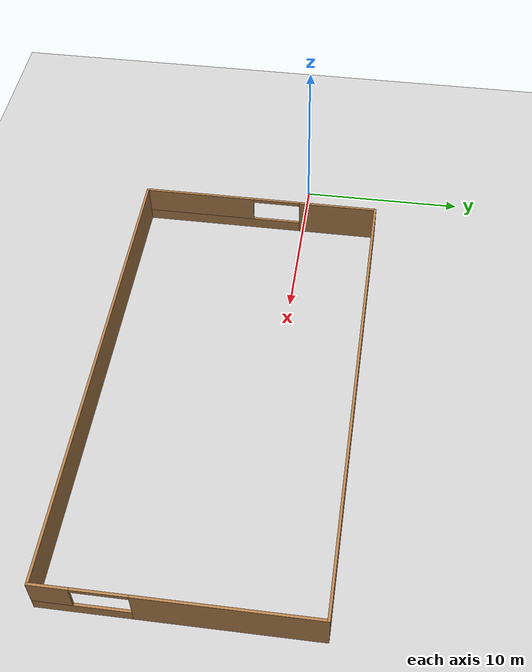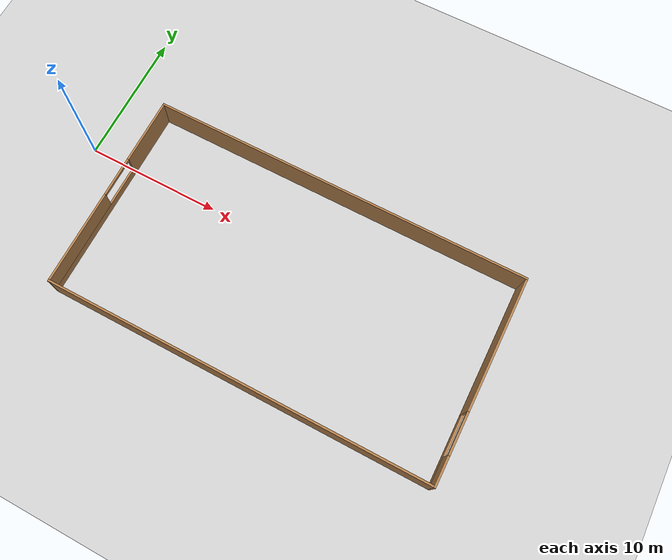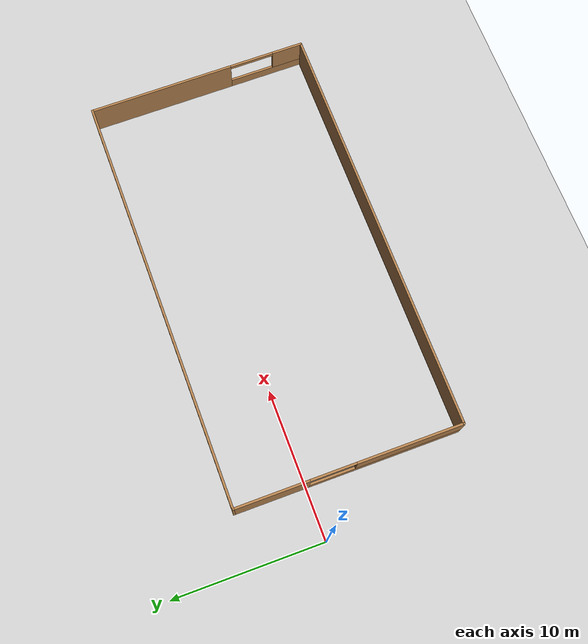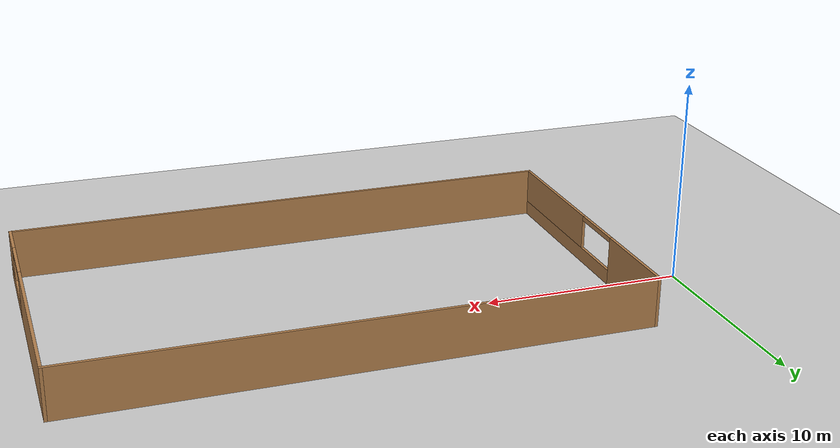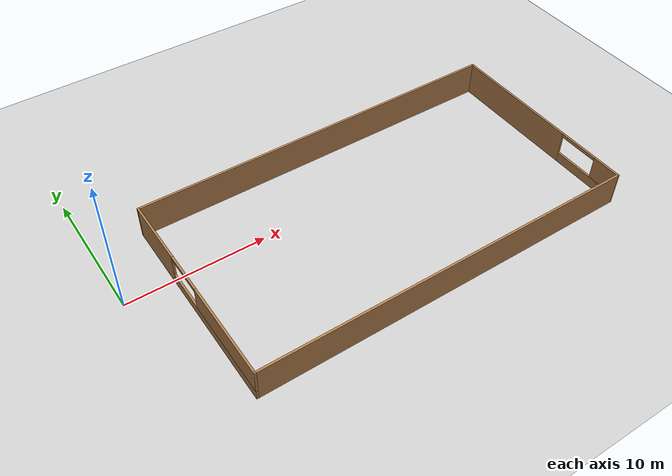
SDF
<sdf version="1.6">
 <world name="default">
  <scene><ambient>0.5 0.5 0.5 1</ambient><background>0.5 0.5 0.5 1</background><shadows>0</shadows></scene>
  <include><uri>model://sun</uri></include>
  <model name="ground_plane">
   <static>1</static>
   <link name="link">
    <collision name="collision">
     <geometry><plane><normal>0 0 1</normal><size>100 100</size></plane></geometry>
     <surface><friction><ode><mu>100</mu><mu2>50</mu2></ode></friction></surface>
    </collision>
    <visual name="visual">
     <cast_shadows>0</cast_shadows>
     <geometry><plane><normal>0 0 1</normal><size>100 100</size></plane></geometry>
     <material>
      <script><uri>file://media/materials/scripts/gazebo.material</uri><name>Gazebo/Grey</name></script>
     </material>
    </visual>
   </link>
  </model>
  <gravity>0 0 -9.8</gravity>
  <magnetic_field>6e-06 2.3e-05 -4.2e-05</magnetic_field>
  <atmosphere type="adiabatic"/>
  <physics name="default_physics" default="0" type="ode">
   <max_step_size>0.001</max_step_size>
   <real_time_factor>1</real_time_factor>
   <real_time_update_rate>1000</real_time_update_rate>
  </physics>
  <scene><ambient>0.4 0.4 0.4 1</ambient><background>0.7 0.7 0.7 1</background><shadows>1</shadows></scene>
  <spherical_coordinates>
   <surface_model>EARTH_WGS84</surface_model>
   <latitude_deg>0</latitude_deg>
   <longitude_deg>0</longitude_deg>
   <elevation>0</elevation>
   <heading_deg>0</heading_deg>
  </spherical_coordinates>
  <model name="Untitled">
   <pose>17.4932 -2.75578 0 0 -0 0</pose>
   <link name="Wall_13">
    <pose>13.975 -0 0 0 -0 -1.5708</pose>
    <visual name="Wall_13_Visual_0">
     <pose>-2.57326 0 1.25 0 -0 0</pose>
     <geometry><box><size>9.85349 0.15 2.5</size></box></geometry>
     <material>
      <script><uri>file://media/materials/scripts/gazebo.material</uri><name>Gazebo/Wood</name></script>
     </material>
     <meta><layer>0</layer></meta>
    </visual>
    <collision name="Wall_13_Collision_0">
     <geometry><box><size>9.85349 0.15 2.5</size></box></geometry>
     <pose>-2.57326 0 1.25 0 -0 0</pose>
    </collision>
    <visual name="Wall_13_Visual_1">
     <pose>4.92674 0 0.375 0 -0 0</pose>
     <geometry><box><size>5.14651 0.15 0.75</size></box></geometry>
     <material>
      <script><uri>file://media/materials/scripts/gazebo.material</uri><name>Gazebo/Wood</name></script>
     </material>
     <meta><layer>0</layer></meta>
    </visual>
    <collision name="Wall_13_Collision_1">
     <geometry><box><size>5.14651 0.15 0.75</size></box></geometry>
     <pose>4.92674 0 0.375 0 -0 0</pose>
    </collision>
    <visual name="Wall_13_Visual_2">
     <pose>6.42674 0 1.625 0 -0 0</pose>
     <geometry><box><size>2.14651 0.15 1.75</size></box></geometry>
     <material>
      <script><uri>file://media/materials/scripts/gazebo.material</uri><name>Gazebo/Wood</name></script>
     </material>
     <meta><layer>0</layer></meta>
    </visual>
    <collision name="Wall_13_Collision_2">
     <geometry><box><size>2.14651 0.15 1.75</size></box></geometry>
     <pose>6.42674 0 1.625 0 -0 0</pose>
    </collision>
    <visual name="Wall_13_Visual_3">
     <pose>3.85349 0 2.375 0 -0 0</pose>
     <geometry><box><size>3 0.15 0.25</size></box></geometry>
     <material>
      <script><uri>file://media/materials/scripts/gazebo.material</uri><name>Gazebo/Wood</name></script>
     </material>
     <meta><layer>0</layer></meta>
    </visual>
    <collision name="Wall_13_Collision_3">
     <geometry><box><size>3 0.15 0.25</size></box></geometry>
     <pose>3.85349 0 2.375 0 -0 0</pose>
    </collision>
   </link>
   <link name="Wall_22">
    <pose>-13.975 -0 0 0 -0 -1.5708</pose>
    <visual name="Wall_22_Visual_0">
     <pose>-5.01742 0 1.25 0 -0 0</pose>
     <geometry><box><size>4.96549 0.15 2.5</size></box></geometry>
     <material>
      <script><uri>file://media/materials/scripts/gazebo.material</uri><name>Gazebo/Wood</name></script>
     </material>
     <meta><layer>0</layer></meta>
    </visual>
    <collision name="Wall_22_Collision_0">
     <geometry><box><size>4.96549 0.15 2.5</size></box></geometry>
     <pose>-5.01742 0 1.25 0 -0 0</pose>
    </collision>
    <visual name="Wall_22_Visual_1">
     <pose>2.48274 0 0.375 0 -0 0</pose>
     <geometry><box><size>10.0348 0.15 0.75</size></box></geometry>
     <material>
      <script><uri>file://media/materials/scripts/gazebo.material</uri><name>Gazebo/Wood</name></script>
     </material>
     <meta><layer>0</layer></meta>
    </visual>
    <collision name="Wall_22_Collision_1">
     <geometry><box><size>10.0348 0.15 0.75</size></box></geometry>
     <pose>2.48274 0 0.375 0 -0 0</pose>
    </collision>
    <visual name="Wall_22_Visual_2">
     <pose>3.98274 0 1.625 0 -0 0</pose>
     <geometry><box><size>7.03485 0.15 1.75</size></box></geometry>
     <material>
      <script><uri>file://media/materials/scripts/gazebo.material</uri><name>Gazebo/Wood</name></script>
     </material>
     <meta><layer>0</layer></meta>
    </visual>
    <collision name="Wall_22_Collision_2">
     <geometry><box><size>7.03485 0.15 1.75</size></box></geometry>
     <pose>3.98274 0 1.625 0 -0 0</pose>
    </collision>
    <visual name="Wall_22_Visual_3">
     <pose>-1.03468 0 2.375 0 -0 0</pose>
     <geometry><box><size>3 0.15 0.25</size></box></geometry>
     <material>
      <script><uri>file://media/materials/scripts/gazebo.material</uri><name>Gazebo/Wood</name></script>
     </material>
     <meta><layer>0</layer></meta>
    </visual>
    <collision name="Wall_22_Collision_3">
     <geometry><box><size>3 0.15 0.25</size></box></geometry>
     <pose>-1.03468 0 2.375 0 -0 0</pose>
    </collision>
   </link>
   <link name="Wall_24">
    <collision name="Wall_24_Collision">
     <geometry><box><size>28 0.15 2.5</size></box></geometry>
     <pose>0 0 1.25 0 -0 0</pose>
    </collision>
    <visual name="Wall_24_Visual">
     <pose>0 0 1.25 0 -0 0</pose>
     <geometry><box><size>28 0.15 2.5</size></box></geometry>
     <material>
      <script><uri>file://media/materials/scripts/gazebo.material</uri><name>Gazebo/Wood</name></script>
     </material>
     <meta><layer>0</layer></meta>
    </visual>
    <pose>-0.050001 -7.425 0 0 -0 0</pose>
   </link>
   <link name="Wall_27">
    <collision name="Wall_27_Collision">
     <geometry><box><size>28.1 0.15 2.5</size></box></geometry>
     <pose>0 0 1.25 0 -0 0</pose>
    </collision>
    <visual name="Wall_27_Visual">
     <pose>0 0 1.25 0 -0 0</pose>
     <geometry><box><size>28.1 0.15 2.5</size></box></geometry>
     <material>
      <script><uri>file://media/materials/scripts/gazebo.material</uri><name>Gazebo/Wood</name></script>
     </material>
     <meta><layer>0</layer></meta>
    </visual>
    <pose>0 7.425 0 0 -0 3.14159</pose>
   </link>
   <static>1</static>
  </model>
 </world>
</sdf>
